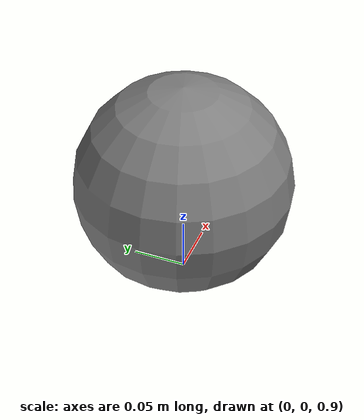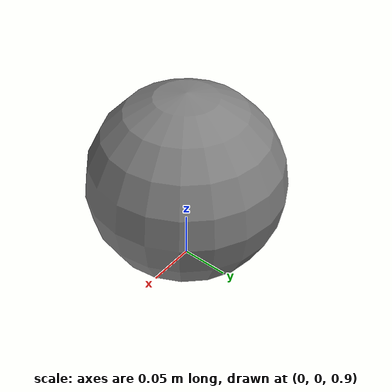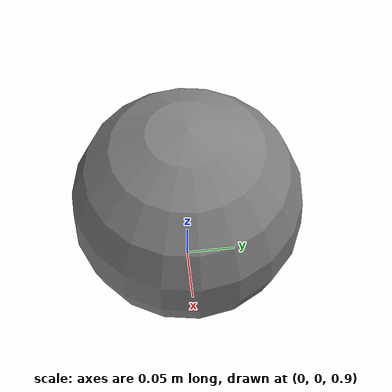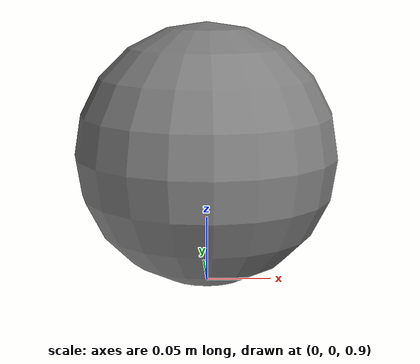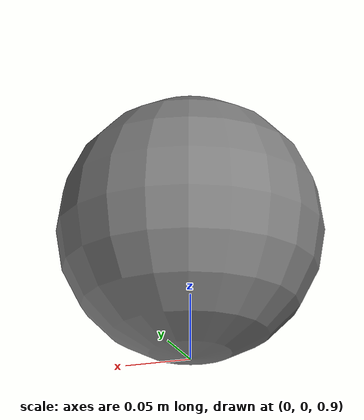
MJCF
<mujoco>
            <default>
                <geom user="5 6 7"/>
            </default>
            <worldbody>
                <body pos="0 0 1">
                    <inertial pos="0 0 0" mass="1" diaginertia="1 1 1"/>
                    <geom name="g1" type="sphere" size="0.1" user=""/>
                    <geom name="g2" type="sphere" size="0.1" user="0"/>
                </body>
            </worldbody>
            </mujoco>
